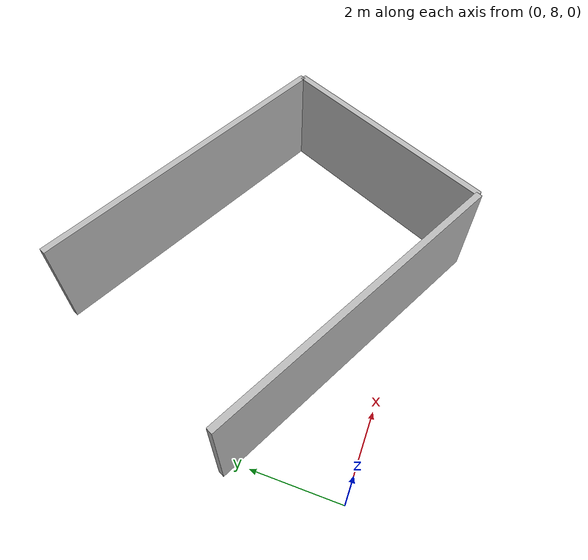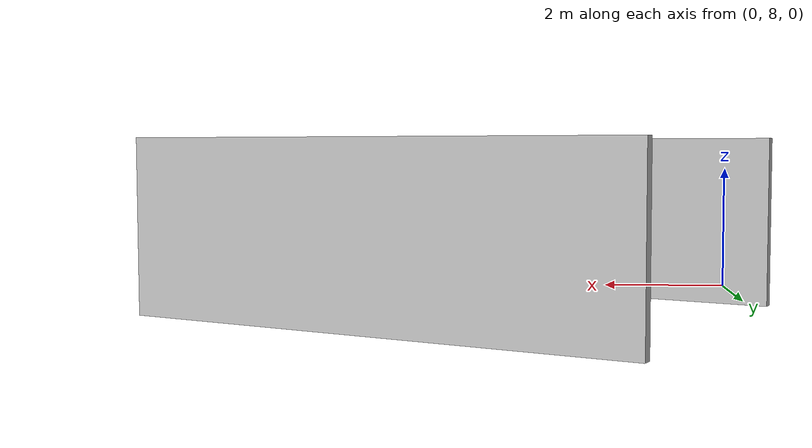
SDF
<?xml version="1.0" ?>
<sdf version="1.6">
  <model name="sps_0517">
    <pose frame="">0 0 0 0 -0 0</pose>
    <static>1</static>
    <self_collide>0</self_collide>
    <allow_auto_disable>0</allow_auto_disable>
    <link name="Wall1396">
      <kinematic>0</kinematic>
      <gravity>1</gravity>
      <self_collide>0</self_collide>
      <collision name="collision">
        <geometry>
          <box>
            <size>7.50037 0.15 2.5</size>
          </box>
        </geometry>
        <pose frame="">0 0 0 0 -0 0</pose>
      </collision>
      <visual name="visual">
        <geometry>
          <box>
            <size>7.50037 0.15 2.5</size>
          </box>
        </geometry>
        <pose frame="">0 0 0 0 -0 0</pose>
        <cast_shadows>1</cast_shadows>
        <transparency>0.0</transparency>
      </visual>
      <pose frame="">5.32134 13.5702 1.25 0 0 -0.434511</pose>
    </link>
    <link name="Wall1397">
      <kinematic>0</kinematic>
      <gravity>1</gravity>
      <self_collide>0</self_collide>
      <collision name="collision">
        <geometry>
          <box>
            <size>5.30036 0.15 2.5</size>
          </box>
        </geometry>
        <pose frame="">0 0 0 0 -0 0</pose>
      </collision>
      <visual name="visual">
        <geometry>
          <box>
            <size>5.30036 0.15 2.5</size>
          </box>
        </geometry>
        <pose frame="">0 0 0 0 -0 0</pose>
        <cast_shadows>1</cast_shadows>
        <transparency>0.0</transparency>
      </visual>
      <pose frame="">7.59115 9.59517 1.25 0 0 -2.01208</pose>
    </link>
    <link name="Wall1398">
      <kinematic>0</kinematic>
      <gravity>1</gravity>
      <self_collide>0</self_collide>
      <collision name="collision">
        <geometry>
          <box>
            <size>7.5008 0.15 2.5</size>
          </box>
        </geometry>
        <pose frame="">0 0 0 0 -0 0</pose>
      </collision>
      <visual name="visual">
        <geometry>
          <box>
            <size>7.5008 0.15 2.5</size>
          </box>
        </geometry>
        <pose frame="">0 0 0 0 -0 0</pose>
        <cast_shadows>1</cast_shadows>
        <transparency>0.0</transparency>
      </visual>
      <pose frame="">3.08965 8.84547 1.25 0 -0 2.68705</pose>
    </link>
  </model>
</sdf>
